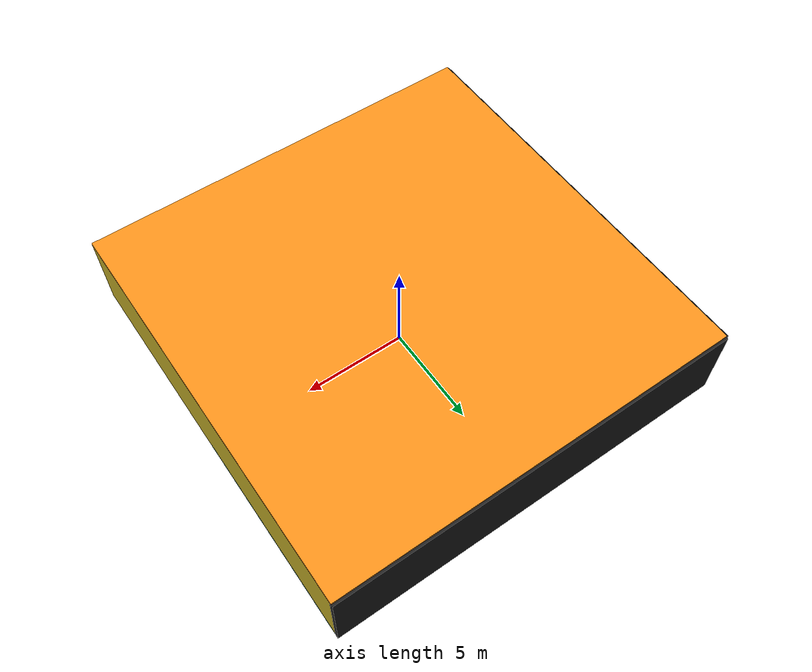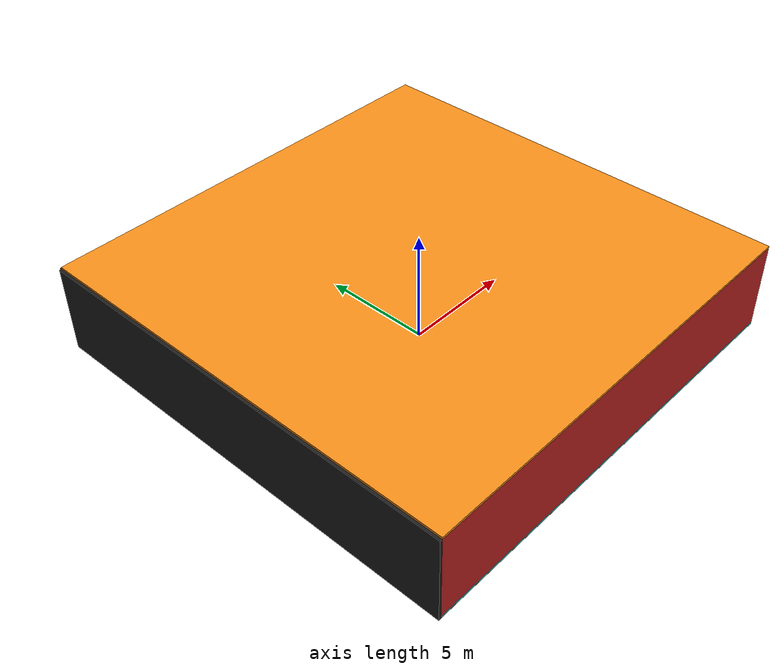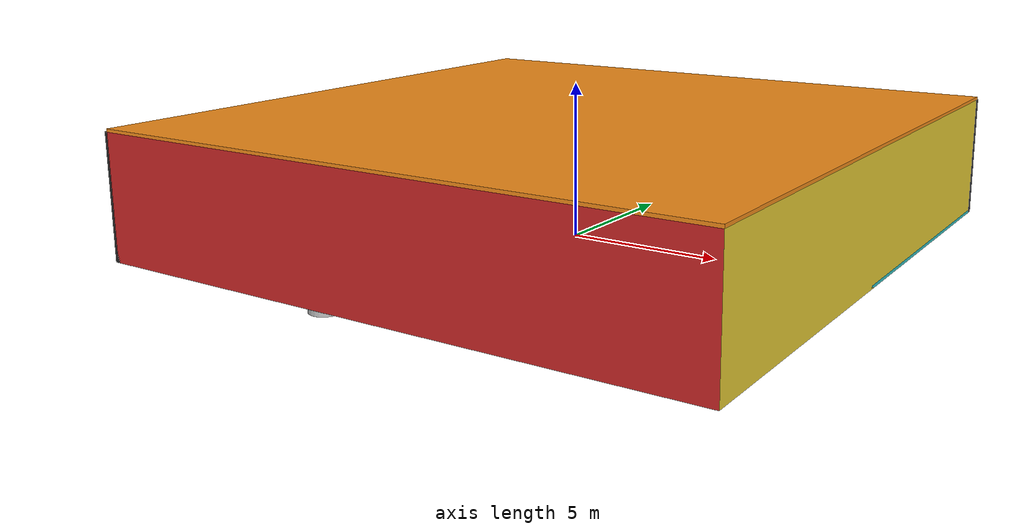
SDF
<sdf version="1.4">
 <world name="default">
  <physics type="ode">
   <max_step_size>0.001</max_step_size>
   <real_time_factor>1</real_time_factor>
   <real_time_update_rate>1000</real_time_update_rate>
   <gravity>0 0 -9.8</gravity>
  </physics>
  <scene><ambient>0.4 0.4 0.4 1</ambient><background>0.7 0.7 0.7 1</background><shadows>1</shadows></scene>
  <model name="Surrounding">
   <static>1</static>
   <link name="Ceiling">
    <collision name="Ceiling_Collision"><geometry><box><size>20 20 0.1</size></box></geometry></collision>
    <visual name="Ceiling_Visual">
     <geometry><box><size>20 20 0.1</size></box></geometry>
     <material>
      <script><uri>file://media/materials/scripts/gazebo.material</uri><name>Gazebo/Orange</name></script>
     </material>
    </visual>
    <pose>0 0 4.05 0 0 0</pose>
   </link>
   <link name="Wall_South">
    <collision name="Wall_South_Collision">
     <geometry><box><size>20 0 4</size></box></geometry>
     <pose>0 0 2 0 -0 0</pose>
    </collision>
    <visual name="Wall_South_Visual">
     <pose>0 0 2 0 -0 0</pose>
     <geometry><box><size>20 0 4</size></box></geometry>
     <material>
      <script><uri>file://media/materials/scripts/gazebo.material</uri><name>Gazebo/RedBright</name></script>
     </material>
    </visual>
    <velocity_decay><linear>0</linear><angular>0</angular></velocity_decay>
    <pose>0 -10 0 0 -0 0</pose>
   </link>
   <link name="Wall_East">
    <collision name="Wall_21_Collision">
     <geometry><box><size>20 0 4</size></box></geometry>
     <pose>0 0 2 0 -0 0</pose>
    </collision>
    <visual name="Wall_21_Visual">
     <pose>0 0 2 0 -0 0</pose>
     <geometry><box><size>20 0 4</size></box></geometry>
     <material>
      <script><uri>file://media/materials/scripts/gazebo.material</uri><name>Gazebo/ZincYellow</name></script>
     </material>
    </visual>
    <velocity_decay><linear>0</linear><angular>0</angular></velocity_decay>
    <pose>10 0 0 0 -0 1.5708</pose>
   </link>
   <link name="Wall_North">
    <collision name="Wall_22_Collision">
     <geometry><box><size>20 0.2 4</size></box></geometry>
     <pose>0 0 2 0 -0 0</pose>
    </collision>
    <visual name="Wall_22_Visual">
     <pose>0 0 2 0 -0 0</pose>
     <geometry><box><size>20 0.2 4</size></box></geometry>
     <material>
      <script><uri>file://media/materials/scripts/gazebo.material</uri><name>Gazebo/FlatBlack</name></script>
     </material>
    </visual>
    <velocity_decay><linear>0</linear><angular>0</angular></velocity_decay>
    <pose>0 10 0 0 -0 0</pose>
   </link>
   <link name="Wall_West">
    <collision name="Wall_23_Collision">
     <geometry><box><size>20 0.2 4</size></box></geometry>
     <pose>0 0 2 0 -0 0</pose>
    </collision>
    <visual name="Wall_23_Visual">
     <pose>0 0 2 0 -0 0</pose>
     <geometry><box><size>20 0.2 4</size></box></geometry>
     <material>
      <script><uri>file://media/materials/scripts/gazebo.material</uri><name>Gazebo/Black</name></script>
     </material>
    </visual>
    <velocity_decay><linear>0</linear><angular>0</angular></velocity_decay>
    <pose>-10 0 0 0 0 -1.5708</pose>
   </link>
   <link name="Ground_link">
    <collision name="collision">
     <pose>0 0 .05 0 -0 0</pose>
     <geometry><box><size>20 20 0.1</size></box></geometry>
    </collision>
    <visual name="visual">
     <pose>0 0 .05 0 -0 0</pose>
     <geometry><box><size>20 20 0.1</size></box></geometry>
     <material>
      <script>
       <uri>file://media/materials/scripts/gazebo.material</uri>
       <name>Gazebo/TurquoiseGlowOutline</name>
      </script>
     </material>
    </visual>
   </link>
   <static>1</static>
  </model>
  <spherical_coordinates>
   <surface_model>EARTH_WGS84</surface_model>
   <latitude_deg>0</latitude_deg>
   <longitude_deg>0</longitude_deg>
   <elevation>0</elevation>
   <heading_deg>0</heading_deg>
  </spherical_coordinates>
  <light name="lightball_0" type="diffuse">
   <diffuse>0.8 0.8 0.8 1</diffuse>
   <specular>0.2 0.2 0.2 1</specular>
   <attenuation>
    <range>100</range>
    <constant>0.7</constant>
    <linear>0.01</linear>
    <quadratic>0.001</quadratic>
   </attenuation>
   <direction>-0.5 0.1 -0.9</direction>
   <pose>-5.60193219854 0.749133845014 0.862674545157 0 0 0</pose>
  </light>
  <light name="lightball_1" type="diffuse">
   <diffuse>0.8 0.8 0.8 1</diffuse>
   <specular>0.2 0.2 0.2 1</specular>
   <attenuation>
    <range>100</range>
    <constant>0.7</constant>
    <linear>0.01</linear>
    <quadratic>0.001</quadratic>
   </attenuation>
   <direction>-0.5 0.1 -0.9</direction>
   <pose>-1.57175732071 -6.56943310039 2.14549075369 0 0 0</pose>
  </light>
  <light name="lightball_2" type="diffuse">
   <diffuse>0.8 0.8 0.8 1</diffuse>
   <specular>0.2 0.2 0.2 1</specular>
   <attenuation>
    <range>100</range>
    <constant>0.7</constant>
    <linear>0.01</linear>
    <quadratic>0.001</quadratic>
   </attenuation>
   <direction>-0.5 0.1 -0.9</direction>
   <pose>9.06013812624 1.04277529712 1.14031197338 0 0 0</pose>
  </light>
  <light name="lightball_3" type="diffuse">
   <diffuse>0.8 0.8 0.8 1</diffuse>
   <specular>0.2 0.2 0.2 1</specular>
   <attenuation>
    <range>100</range>
    <constant>0.7</constant>
    <linear>0.01</linear>
    <quadratic>0.001</quadratic>
   </attenuation>
   <direction>-0.5 0.1 -0.9</direction>
   <pose>-8.60715841959 7.63070134856 3.47517354772 0 0 0</pose>
  </light>
  <light name="lightball_4" type="diffuse">
   <diffuse>0.8 0.8 0.8 1</diffuse>
   <specular>0.2 0.2 0.2 1</specular>
   <attenuation>
    <range>100</range>
    <constant>0.7</constant>
    <linear>0.01</linear>
    <quadratic>0.001</quadratic>
   </attenuation>
   <direction>-0.5 0.1 -0.9</direction>
   <pose>3.76504538776 -9.00580225185 1.03099341377 0 0 0</pose>
  </light>
  <light name="lightball_5" type="diffuse">
   <diffuse>0.8 0.8 0.8 1</diffuse>
   <specular>0.2 0.2 0.2 1</specular>
   <attenuation>
    <range>100</range>
    <constant>0.7</constant>
    <linear>0.01</linear>
    <quadratic>0.001</quadratic>
   </attenuation>
   <direction>-0.5 0.1 -0.9</direction>
   <pose>4.34472633597 -2.36267868756 2.05179070594 0 0 0</pose>
  </light>
  <light name="lightball_6" type="diffuse">
   <diffuse>0.8 0.8 0.8 1</diffuse>
   <specular>0.2 0.2 0.2 1</specular>
   <attenuation>
    <range>100</range>
    <constant>0.7</constant>
    <linear>0.01</linear>
    <quadratic>0.001</quadratic>
   </attenuation>
   <direction>-0.5 0.1 -0.9</direction>
   <pose>2.92332536533 -2.56120951137 2.93844676171 0 0 0</pose>
  </light>
  <include>
   <uri>model://construction_cone</uri>
   <pose>-8.66458668846 -6.57759981381 0 0 0 2.39065206773</pose>
  </include>
  <include>
   <uri>model://robocup_3Dsim_goal</uri>
   <pose>-7.1850878191 -5.52068276191 0 0 0 1.54630744065</pose>
  </include>
  <include>
   <uri>model://construction_cone</uri>
   <pose>-8.03226504367 2.16342997833 0 0 0 0.0710568635302</pose>
  </include>
  <include>
   <uri>model://textured_shapes</uri>
   <pose>-1.12258554216 -8.61133412653 0 0 0 1.70714055664</pose>
  </include>
  <include><uri>model://cabinet</uri><pose>-2.60747986133 -4.50364401273 0 0 0 1.51637413292</pose></include>
  <include><uri>model://table</uri><pose>-2.46377128903 0.74263213605 0 0 0 1.14642239463</pose></include>
  <include><uri>model://table</uri><pose>0.310710909304 -6.33953602185 0 0 0 3.13173619875</pose></include>
 </world>
</sdf>

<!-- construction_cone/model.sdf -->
<sdf version="1.5">
  <model name="Construction Cone">
    <link name="link">
      <collision name="collision">
        <geometry>
          <mesh>
            <scale>10 10 10</scale>
            <uri>file://isr-testbed/construction_cone/meshes/construction_cone.dae</uri>
          </mesh>
        </geometry>
      </collision>
      <visual name="visual">
        <geometry>
          <mesh>
            <scale>10 10 10</scale>
            <uri>file://isr-testbed/construction_cone/meshes/construction_cone.dae</uri>
          </mesh>
        </geometry>
      </visual>
    </link>
  </model>
</sdf>

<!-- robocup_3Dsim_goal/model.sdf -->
<sdf version="1.5">
  <model name="robocup_3d_goal">
    <static>true</static>
    <link name="left_post">
      <pose>0 1.05 0.45 0 0 0</pose>
      <collision name="collision">
        <geometry>
          <cylinder>
            <radius>0.05</radius>
            <length>0.9</length>
          </cylinder>
        </geometry>
      </collision>
      <visual name="visual">
        <geometry>
          <cylinder>
            <radius>0.05</radius>
            <length>0.9</length>
          </cylinder>
        </geometry>
        <material>
          <script>
            <uri>file://media/materials/scripts/gazebo.material</uri>
            <name>Gazebo/ZincYellow</name>
          </script>
        </material>
      </visual>
    </link>
    <link name="left_support_horiz_lower">
      <pose>0.30 1.05 0.01 0 0 0</pose>
      <collision name="collision">
        <geometry>
          <box>
            <size>0.50 0.02 0.02</size>
          </box>
        </geometry>
      </collision>
      <visual name="visual">
        <geometry>
          <box>
            <size>0.50 0.02 0.02</size>
          </box>
        </geometry>
        <material>
          <script>
            <uri>file://media/materials/scripts/gazebo.material</uri>
            <name>Gazebo/White</name>
          </script>
        </material>
      </visual>
    </link>
    <link name="left_support_horiz_upper">
      <pose>0.30 1.05 0.79 0 0 0</pose>
      <collision name="collision">
        <geometry>
          <box>
            <size>0.50 0.02 0.02</size>
          </box>
        </geometry>
      </collision>
      <visual name="visual">
        <geometry>
          <box>
            <size>0.50 0.02 0.02</size>
          </box>
        </geometry>
        <material>
          <script>
            <uri>file://media/materials/scripts/gazebo.material</uri>
            <name>Gazebo/White</name>
          </script>
        </material>
      </visual>
    </link>
    <link name="left_support_vertical">
      <pose>0.56 1.05 0.4 0 1.5708 0</pose>
      <collision name="collision">
        <geometry>
          <box>
            <size>0.80 0.02 0.02</size>
          </box>
        </geometry>
      </collision>
      <visual name="visual">
        <geometry>
          <box>
            <size>0.80 0.02 0.02</size>
          </box>
        </geometry>
        <material>
          <script>
            <uri>file://media/materials/scripts/gazebo.material</uri>
            <name>Gazebo/White</name>
          </script>
        </material>
      </visual>
    </link>
    <link name="right_support_horiz_lower">
      <pose>0.30 -1.05 0.01 0 0 0</pose>
      <collision name="collision">
        <geometry>
          <box>
            <size>0.50 0.02 0.02</size>
          </box>
        </geometry>
      </collision>
      <visual name="visual">
        <geometry>
          <box>
            <size>0.50 0.02 0.02</size>
          </box>
        </geometry>
        <material>
          <script>
            <uri>file://media/materials/scripts/gazebo.material</uri>
            <name>Gazebo/White</name>
          </script>
        </material>
      </visual>
    </link>
    <link name="right_support_horiz_upper">
      <pose>0.30 -1.05 0.79 0 0 0</pose>
      <collision name="collision">
        <geometry>
          <box>
            <size>0.50 0.02 0.02</size>
          </box>
        </geometry>
      </collision>
      <visual name="visual">
        <geometry>
          <box>
            <size>0.50 0.02 0.02</size>
          </box>
        </geometry>
        <material>
          <script>
            <uri>file://media/materials/scripts/gazebo.material</uri>
            <name>Gazebo/White</name>
          </script>
        </material>
      </visual>
    </link>
    <link name="right_support_vertical">
      <pose>0.56 -1.05 0.4 0 1.5708 0</pose>
      <collision name="collision">
        <geometry>
          <box>
            <size>0.80 0.02 0.02</size>
          </box>
        </geometry>
      </collision>
      <visual name="visual">
        <geometry>
          <box>
            <size>0.80 0.02 0.02</size>
          </box>
        </geometry>
        <material>
          <script>
            <uri>file://media/materials/scripts/gazebo.material</uri>
            <name>Gazebo/White</name>
          </script>
        </material>
      </visual>
    </link>
    <link name="center_support_horiz_lower">
      <pose>0.56 0 0.01 0 1.5708 0</pose>
      <collision name="collision">
        <geometry>
          <box>
            <size>0.02 2.08 0.02</size>
          </box>
        </geometry>
      </collision>
      <visual name="visual">
        <geometry>
          <box>
            <size>0.02 2.08 0.02</size>
          </box>
        </geometry>
        <material>
          <script>
            <uri>file://media/materials/scripts/gazebo.material</uri>
            <name>Gazebo/White</name>
          </script>
        </material>
      </visual>
    </link>
    <link name="center_support_horiz_upper">
      <pose>0.56 0 0.79 0 1.5708 0</pose>
      <collision name="collision">
        <geometry>
          <box>
            <size>0.02 2.08 0.02</size>
          </box>
        </geometry>
      </collision>
      <visual name="visual">
        <geometry>
          <box>
            <size>0.02 2.08 0.02</size>
          </box>
        </geometry>
        <material>
          <script>
            <uri>file://media/materials/scripts/gazebo.material</uri>
            <name>Gazebo/White</name>
          </script>
        </material>
      </visual>
    </link>
    <link name="right_post">
      <pose>0 -1.05 0.45 0 0 0</pose>
      <collision name="collision">
        <geometry>
          <cylinder>
            <radius>0.05</radius>
            <length>0.9</length>
          </cylinder>
        </geometry>
      </collision>
      <visual name="visual">
        <geometry>
          <cylinder>
            <radius>0.05</radius>
            <length>0.9</length>
          </cylinder>
        </geometry>
        <material>
          <script>
            <uri>file://media/materials/scripts/gazebo.material</uri>
            <name>Gazebo/ZincYellow</name>
          </script>
        </material>
      </visual>
    </link>
    <link name="crossbar">
      <pose>0 0 0.85 1.57 1.57 0</pose>
      <collision name="collision">
        <geometry>
          <cylinder>
            <radius>0.05</radius>
            <length>2.0</length>
          </cylinder>
        </geometry>
      </collision>
      <visual name="visual">
        <geometry>
          <cylinder>
            <radius>0.05</radius>
            <length>2.0</length>
          </cylinder>
        </geometry>
        <material>
          <script>
            <uri>file://media/materials/scripts/gazebo.material</uri>
            <name>Gazebo/ZincYellow</name>
          </script>
        </material>
      </visual>
    </link>
    <link name="center_net">
      <pose>0.56 0 0.40 0 0 0</pose>
      <collision name="collision">
        <geometry>
          <box>
            <size>0.01 2.1 0.80</size>
          </box>
        </geometry>
      </collision>
      <visual name="visual">
        <geometry>
          <box>
            <size>0.01 2.1 0.80</size>
          </box>
        </geometry>
        <material>
          <script>
            <uri>model://../model_source/models/robocup09_spl_field/materials/scripts/</uri>
            <uri>model://../model_source/models/robocup09_spl_field/materials/textures/</uri>
            <name>RoboCup/Net</name>
          </script>
        </material>
      </visual>
    </link>
    <link name="left_net">
      <pose>0.30 1.05 0.40 0 0 0</pose>
      <collision name="collision">
        <geometry>
          <box>
            <size>0.50 0.01 0.76</size>
          </box>
        </geometry>
      </collision>
      <visual name="visual">
        <geometry>
          <box>
            <size>0.50 0.01 0.76</size>
          </box>
        </geometry>
        <material>
          <script>
            <uri>model://../model_source/models/robocup09_spl_field/materials/scripts/</uri>
            <uri>model://../model_source/models/robocup09_spl_field/materials/textures/</uri>
            <name>RoboCup/Net</name>
          </script>
        </material>
      </visual>
    </link>
    <link name="right_net">
      <pose>0.30 -1.05 0.40 0 0 0</pose>
      <collision name="collision">
        <geometry>
          <box>
            <size>0.50 0.01 0.76</size>
          </box>
        </geometry>
      </collision>
      <visual name="visual">
        <geometry>
          <box>
            <size>0.50 0.01 0.76</size>
          </box>
        </geometry>
        <material>
          <script>
            <uri>model://../model_source/models/robocup09_spl_field/materials/scripts/</uri>
            <uri>model://../model_source/models/robocup09_spl_field/materials/textures/</uri>
            <name>RoboCup/Net</name>
          </script>
        </material>
      </visual>
    </link>
  </model>
</sdf>

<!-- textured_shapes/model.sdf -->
<sdf version="1.6">
  <model name="textured_shapes">
    <pose>0 0 0.5 0 0 0</pose>
    <link name="box">
      <pose>0 -1.5 0 0 0 0</pose>
      <collision name="collision">
        <geometry>
          <box>
            <size>1 1 1</size>
          </box>
        </geometry>
      </collision>
      <visual name="visual">
        <geometry>
          <box>
            <size>1 1 1</size>
          </box>
        </geometry>
        <material>
          <script>
            <uri>model://../model_source/models/textured_shapes/materials/scripts</uri>
            <uri>model://../model_source/models/textured_shapes/materials/textures</uri>
            <name>TexturedShape/Squares</name>
          </script>
        </material>
      </visual>
    </link>
    <link name="sphere">
      <collision name="collision">
        <geometry>
          <sphere>
            <radius>0.5</radius>
          </sphere>
        </geometry>
      </collision>
      <visual name="visual">
        <geometry>
          <sphere>
            <radius>0.5</radius>
          </sphere>
        </geometry>
        <material>
          <script>
            <uri>model://../model_source/models/textured_shapes/materials/scripts</uri>
            <uri>model://../model_source/models/textured_shapes/materials/textures</uri>
            <name>TexturedShape/Squares</name>
          </script>
        </material>
      </visual>
    </link>
    <link name="cylinder">
      <pose>0 1.5 0 0 0 0</pose>
      <collision name="collision">
        <geometry>
          <cylinder>
            <radius>0.5</radius>
            <length>1</length>
          </cylinder>
        </geometry>
      </collision>
      <visual name="visual">
        <geometry>
          <cylinder>
            <radius>0.5</radius>
            <length>1</length>
          </cylinder>
        </geometry>
        <material>
          <script>
            <uri>model://../model_source/models/textured_shapes/materials/scripts</uri>
            <uri>model://../model_source/models/textured_shapes/materials/textures</uri>
            <name>TexturedShape/Squares</name>
          </script>
        </material>
      </visual>
    </link>
  </model>
</sdf>

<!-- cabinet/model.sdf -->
<sdf version="1.5">
  <model name="cabinet">
    <static>true</static>
    <link name="cabinet_bottom_plate">
      <inertial>
        <pose>0 0 -1 0 0 0</pose>
        <inertia>
          <ixx>2.050000</ixx>
          <ixy>0</ixy>
          <ixz>0</ixz>
          <iyy>2.050000</iyy>
          <iyz>0</iyz>
          <izz>2.050000</izz>
        </inertia>
        <mass>25.000000</mass>
      </inertial>
      <collision name="cabinet_bottom_plate_geom">
        <pose>0 0 0.010000 0 0 0</pose>
        <geometry>
          <box>
            <size>0.450000 0.450000 0.020000</size>
          </box>
        </geometry>
      </collision>
      <visual name="cabinet_bottom_plate_geom_visual">
        <pose>0 0 0.010000 0 0 0</pose>
        <geometry>
          <box>
            <size>0.450000 0.450000 0.020000</size>
          </box>
        </geometry>
        <material>
          <script>
            <uri>model://media/materials/scripts/gazebo.material</uri>
            <name>Gazebo/Wood</name>
          </script>
        </material>
      </visual>
      <collision name="cabinet_bottom_plate_geom_cabinet_back_plate">
        <pose>0.235000 0 0.510000 0 0 0</pose>
        <geometry>
          <box>
            <size>0.020000 0.450000 1.020000</size>
          </box>
        </geometry>
      </collision>
      <visual name="cabinet_bottom_plate_geom_cabinet_back_plate_visual">
        <pose>0.235000 0 0.510000 0 0 0</pose>
        <geometry>
          <box>
            <size>0.020000 0.450000 1.020000</size>
          </box>
        </geometry>
        <material>
          <script>
            <uri>model://media/materials/scripts/gazebo.material</uri>
            <name>Gazebo/Wood</name>
          </script>
        </material>
      </visual>
      <collision name="cabinet_bottom_plate_geom_cabinet_left_plate">
        <pose>0 0.235000 0.510000 0 0 0</pose>
        <geometry>
          <box>
            <size>0.450000 0.020000 1.020000</size>
          </box>
        </geometry>
      </collision>
      <visual name="cabinet_bottom_plate_geom_cabinet_left_plate_visual">
        <pose>0 0.235000 0.510000 0 0 0</pose>
        <geometry>
          <box>
            <size>0.450000 0.020000 1.020000</size>
          </box>
        </geometry>
        <material>
          <script>
            <uri>model://media/materials/scripts/gazebo.material</uri>
            <name>Gazebo/Wood</name>
          </script>
        </material>
      </visual>
      <collision name="cabinet_bottom_plate_geom_cabinet_middle_plate">
        <pose>0 0 0.510000 0 0 0</pose>
        <geometry>
          <box>
            <size>0.450000 0.450000 0.020000</size>
          </box>
        </geometry>
      </collision>
      <visual name="cabinet_bottom_plate_geom_cabinet_middle_plate_visual">
        <pose>0 0 0.510000 0 0 0</pose>
        <geometry>
          <box>
            <size>0.450000 0.450000 0.020000</size>
          </box>
        </geometry>
        <material>
          <script>
            <uri>model://media/materials/scripts/gazebo.material</uri>
            <name>Gazebo/Wood</name>
          </script>
        </material>
      </visual>
      <collision name="cabinet_bottom_plate_geom_cabinet_right_plate">
        <pose>0 -0.235000 0.510000 0 0 0</pose>
        <geometry>
          <box>
            <size>0.450000 0.020000 1.020000</size>
          </box>
        </geometry>
      </collision>
      <visual name="cabinet_bottom_plate_geom_cabinet_right_plate_visual">
        <pose>0 -0.235000 0.510000 0 0 0</pose>
        <geometry>
          <box>
            <size>0.450000 0.020000 1.020000</size>
          </box>
        </geometry>
        <material>
          <script>
            <uri>model://media/materials/scripts/gazebo.material</uri>
            <name>Gazebo/Wood</name>
          </script>
        </material>
      </visual>
      <collision name="cabinet_bottom_plate_geom_cabinet_top_plate">
        <pose>0 0 1.010000 0 0 0</pose>
        <geometry>
          <box>
            <size>0.450000 0.450000 0.020000</size>
          </box>
        </geometry>
      </collision>
      <visual name="cabinet_bottom_plate_geom_cabinet_top_plate_visual">
        <pose>0 0 1.010000 0 0 0</pose>
        <geometry>
          <box>
            <size>0.450000 0.450000 0.020000</size>
          </box>
        </geometry>
        <material>
          <script>
            <uri>model://media/materials/scripts/gazebo.material</uri>
            <name>Gazebo/Wood</name>
          </script>
        </material>
      </visual>
    </link>
  </model>
</sdf>

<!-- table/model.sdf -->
<sdf version="1.5">
  <model name="table">
    <static>true</static>
    <link name="link">
      <collision name="surface">
        <pose>0 0 1.0 0 0 0</pose>
        <geometry>
          <box>
            <size>1.5 0.8 0.03</size>
          </box>
        </geometry>
        <surface>
          <friction>
            <ode>
              <mu>0.6</mu>
              <mu2>0.6</mu2>
            </ode>
          </friction>
        </surface>
      </collision>
      <visual name="visual1">
        <pose>0 0 1.0 0 0 0</pose>
        <geometry>
          <box>
            <size>1.5 0.8 0.03</size>
          </box>
        </geometry>
        <material>
          <script>
            <uri>model://media/materials/scripts/gazebo.material</uri>
            <name>Gazebo/Wood</name>
          </script>
        </material>
      </visual>
      <collision name="front_left_leg">
        <pose>0.68 0.38 0.5 0 0 0</pose>
        <geometry>
          <cylinder>
            <radius>0.02</radius>
            <length>1.0</length>
          </cylinder>
        </geometry>
      </collision>
      <visual name="front_left_leg">
        <pose>0.68 0.38 0.5 0 0 0</pose>
        <geometry>
          <cylinder>
            <radius>0.02</radius>
            <length>1.0</length>
          </cylinder>
        </geometry>
        <material>
          <script>
            <uri>model://media/materials/scripts/gazebo.material</uri>
            <name>Gazebo/Grey</name>
          </script>
        </material>
      </visual>
      <collision name="front_right_leg">
        <pose>0.68 -0.38 0.5 0 0 0</pose>
        <geometry>
          <cylinder>
            <radius>0.02</radius>
            <length>1.0</length>
          </cylinder>
        </geometry>
      </collision>
      <visual name="front_right_leg">
        <pose>0.68 -0.38 0.5 0 0 0</pose>
        <geometry>
          <cylinder>
            <radius>0.02</radius>
            <length>1.0</length>
          </cylinder>
        </geometry>
        <material>
          <script>
            <uri>model://media/materials/scripts/gazebo.material</uri>
            <name>Gazebo/Grey</name>
          </script>
        </material>
      </visual>
      <collision name="back_right_leg">
        <pose>-0.68 -0.38 0.5 0 0 0</pose>
        <geometry>
          <cylinder>
            <radius>0.02</radius>
            <length>1.0</length>
          </cylinder>
        </geometry>
      </collision>
      <visual name="back_right_leg">
        <pose>-0.68 -0.38 0.5 0 0 0</pose>
        <geometry>
          <cylinder>
            <radius>0.02</radius>
            <length>1.0</length>
          </cylinder>
        </geometry>
        <material>
          <script>
            <uri>model://media/materials/scripts/gazebo.material</uri>
            <name>Gazebo/Grey</name>
          </script>
        </material>
      </visual>
      <collision name="back_left_leg">
        <pose>-0.68 0.38 0.5 0 0 0</pose>
        <geometry>
          <cylinder>
            <radius>0.02</radius>
            <length>1.0</length>
          </cylinder>
        </geometry>
      </collision>
      <visual name="back_left_leg">
        <pose>-0.68 0.38 0.5 0 0 0</pose>
        <geometry>
          <cylinder>
            <radius>0.02</radius>
            <length>1.0</length>
          </cylinder>
        </geometry>
        <material>
          <script>
            <uri>model://media/materials/scripts/gazebo.material</uri>
            <name>Gazebo/Grey</name>
          </script>
        </material>
      </visual>
    </link>
  </model>
</sdf>
